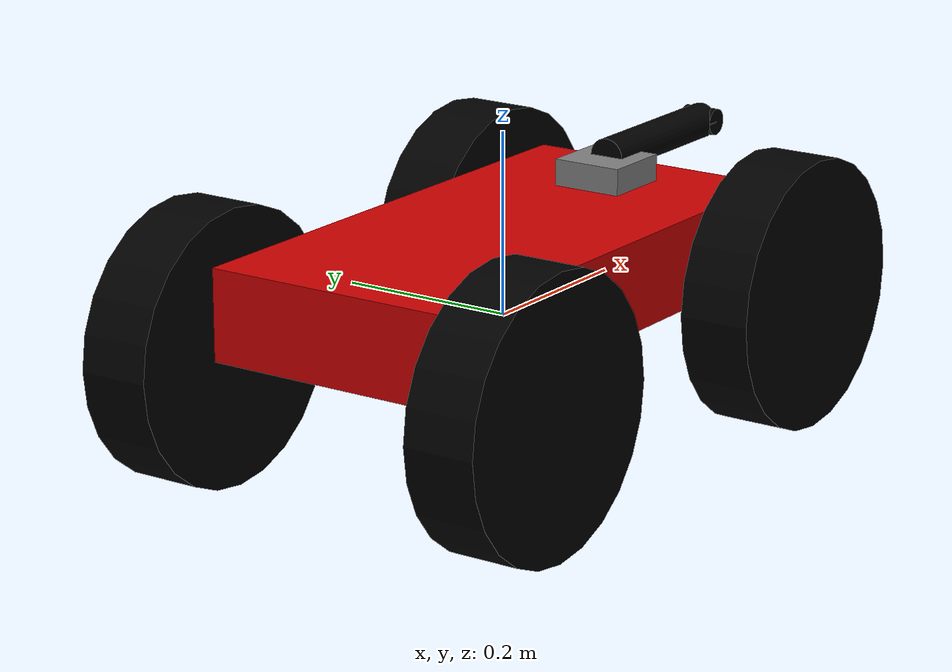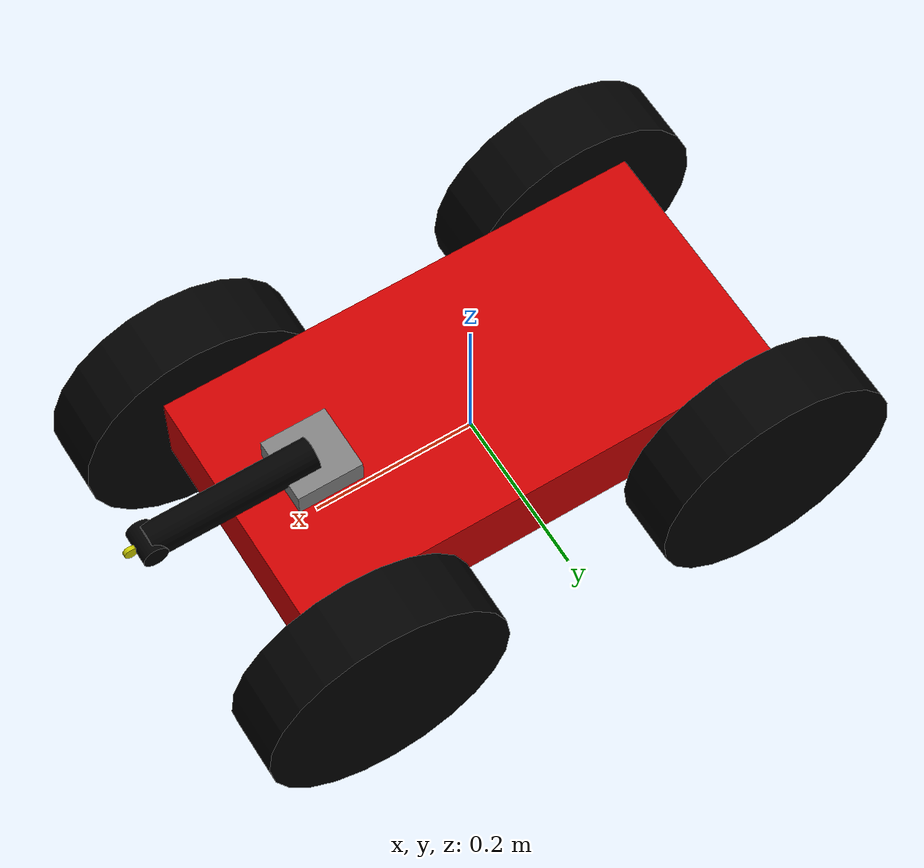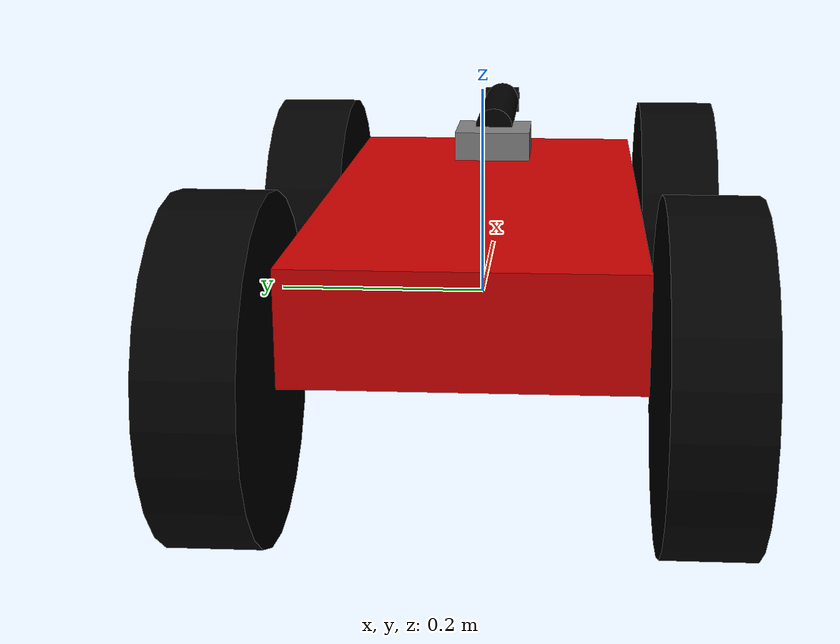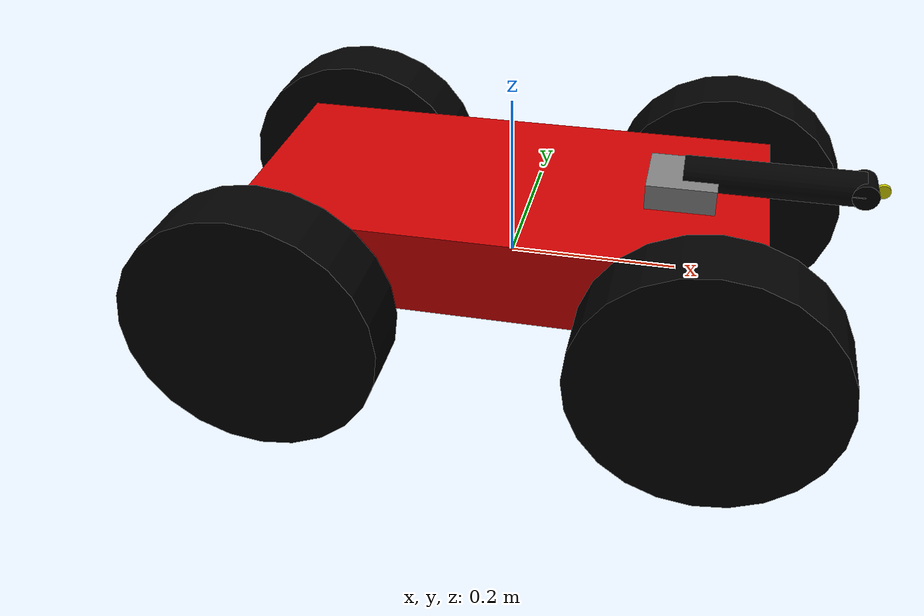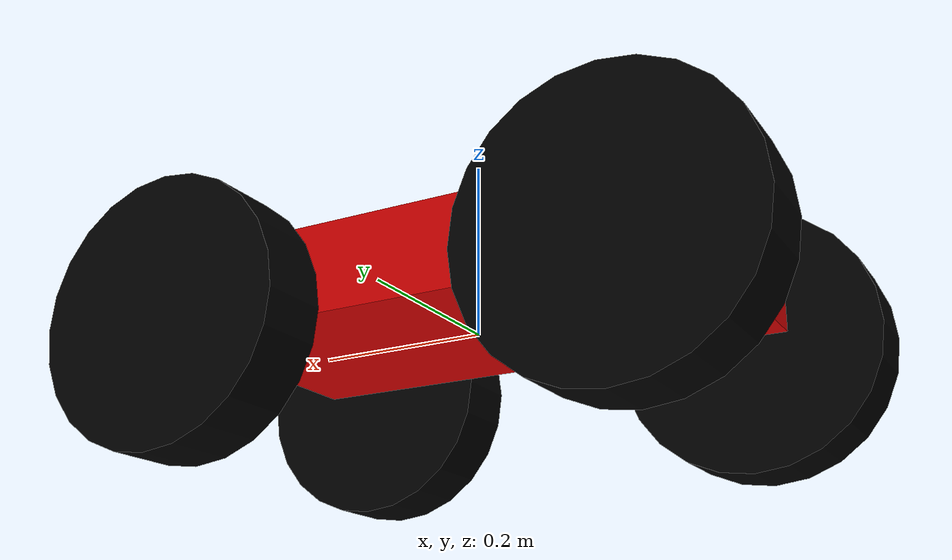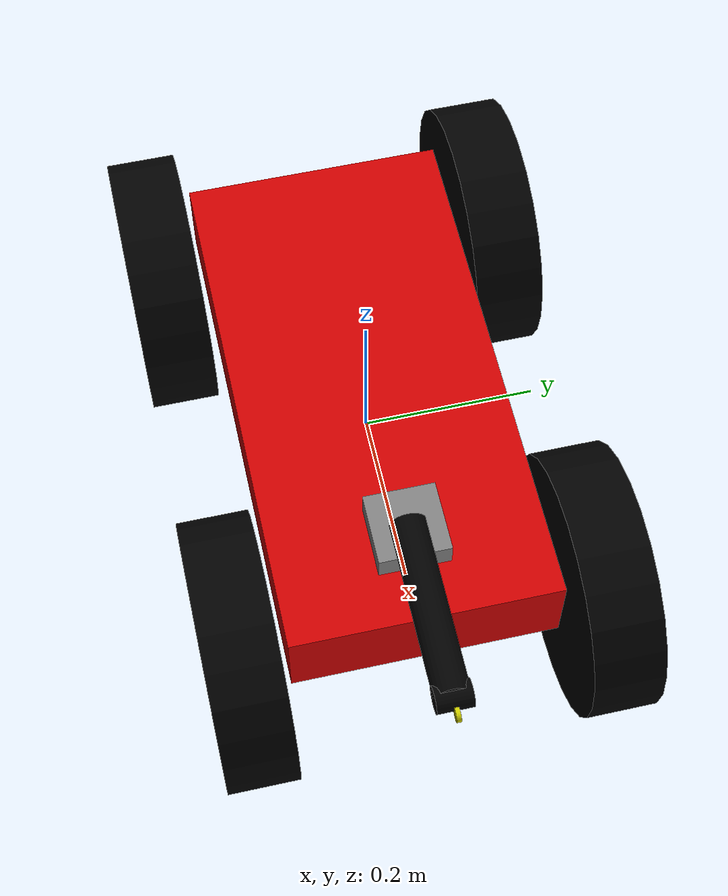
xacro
<?xml version='1.0'?>
<robot name="mogi_bot" xmlns:xacro="http://www.ros.org/wiki/xacro">

  <!-- 材料定义 -->
  <material name="blue">
    <color rgba="0 0 0.8 1"/>
  </material>
  <material name="red">
    <color rgba="0.8 0 0 1"/>
  </material>
  <material name="green">
    <color rgba="0 0.8 0 1"/>
  </material>
  <material name="yellow">
    <color rgba="0.8 0.8 0 1"/>
  </material>
  <material name="black">
    <color rgba="0 0 0 1"/>
  </material>
  <material name="gray">
    <color rgba="0.5 0.5 0.5 1"/>
  </material>
  <material name="silver">
    <color rgba="0.8 0.8 0.8 1"/>
  </material>

  <!-- 核心参数定义（四轮小车适配） -->
  <xacro:property name="base_mass" value="20.0" />
  <xacro:property name="wheel_mass" value="3.0" />
  <xacro:property name="wheel_radius" value="0.15" />  <!-- 增大轮子半径 -->
  <xacro:property name="wheel_length" value="0.08" />  <!-- 增大轮子宽度 -->
  <xacro:property name="wheel_separation" value="0.4" /> <!-- 增大左右轮间距 -->
  <xacro:property name="wheelbase" value="0.5" />        <!-- 增大前后轮间距 -->

  <!-- 云台参数 -->
  <xacro:property name="gimbal_base_mass" value="0.5" />
  <xacro:property name="gimbal_yaw_mass" value="0.5" />
  <xacro:property name="barrel_mass" value="0.3" />
  <xacro:property name="camera_mass" value="0.3" />
  <xacro:property name="barrel_length" value="0.2" />
  <xacro:property name="barrel_radius" value="0.02" />

  <link name="odom">
      <inertial>
        <mass value="0.001"/>
        <inertia ixx="0.001" ixy="0.0" ixz="0.0" iyy="0.001" iyz="0.0" izz="0.001"/>
      </inertial>
    </link>

    <!-- 新增：odom 到 base_footprint 的固定关节（里程计坐标系关联） -->
    <joint name="odom_joint" type="fixed">
      <origin xyz="0 0 0" rpy="0 0 0" />
      <parent link="odom"/>
      <child link="base_footprint"/>
    </joint>

  <link name="base_footprint">
    <inertial>
      <mass value="0.001"/>
      <inertia ixx="0.001" ixy="0.0" ixz="0.0" iyy="0.001" iyz="0.0" izz="0.001"/>
    </inertial>
  </link>

  <!-- 2. 车身底座（base_link）- 增大尺寸 -->
  <joint name="base_footprint_joint" type="fixed">
    <origin xyz="0 0 0" rpy="0 0 0" />
    <parent link="base_footprint"/>
    <child link="base_link" />
  </joint>

  <link name='base_link'>
    <inertial>
      <mass value="${base_mass}"/>
      <origin xyz="0.0 0 0.05" rpy="0 0 0"/>
      <inertia
          ixx="0.1" ixy="0" ixz="0"
          iyy="0.15" iyz="0"
          izz="0.2"
      />
    </inertial>

    <collision name='collision'>
      <origin xyz="0 0 0.05" rpy="0 0 0"/>
      <geometry>
        <box size="0.6 0.3 0.1"/>  <!-- 增大车身尺寸 -->
      </geometry>
    </collision>

    <visual name='base_link_visual'>
      <origin xyz="0 0 0.05" rpy="0 0 0"/>
      <geometry>
        <box size="0.6 0.3 0.1"/>
      </geometry>
      <material name="red"/>  <!-- 改为红色车身 -->
    </visual>
  </link>

  <!-- 3. 云台结构 -->
  <joint name="gimbal_base_joint" type="fixed">
    <origin xyz="0.2 0 0.05" rpy="0 0 0" />
    <parent link="base_link"/>
    <child link="gimbal_base" />
  </joint>

  <link name='gimbal_base'>
    <inertial>
      <mass value="${gimbal_base_mass}"/>
      <origin xyz="0 0 0.02" rpy="0 0 0"/>
      <inertia
          ixx="0.001" ixy="0" ixz="0"
          iyy="0.001" iyz="0"
          izz="0.001"
      />
    </inertial>

    <collision name='gimbal_base_collision'>
      <origin xyz="0 0 0.02" rpy="0 0 0"/>
      <geometry>
        <cylinder radius="0.04" length="0.04"/>
      </geometry>
    </collision>

    <visual name='gimbal_base_visual'>
      <origin xyz="0 0 0.02" rpy="0 0 0"/>
      <geometry>
        <cylinder radius="0.04" length="0.04"/>
      </geometry>
      <material name="silver"/>
    </visual>
  </link>

  <!-- 云台偏航关节 - 固定关节 -->
  <joint name="gimbal_yaw_joint" type="fixed">
    <origin xyz="0 0 0.04" rpy="0 0 0" />
    <parent link="gimbal_base"/>
    <child link="gimbal_yaw" />
  </joint>

  <link name='gimbal_yaw'>
    <inertial>
      <mass value="${gimbal_yaw_mass}"/>
      <origin xyz="0 0 0.02" rpy="0 0 0"/>
      <inertia
          ixx="0.0005" ixy="0" ixz="0"
          iyy="0.0005" iyz="0"
          izz="0.0005"
      />
    </inertial>

    <collision name='gimbal_yaw_collision'>
      <origin xyz="0 0 0.02" rpy="0 0 0"/>
      <geometry>
        <box size="0.08 0.08 0.04"/>
      </geometry>
    </collision>

    <visual name='gimbal_yaw_visual'>
      <origin xyz="0 0 0.02" rpy="0 0 0"/>
      <geometry>
        <box size="0.08 0.08 0.04"/>
      </geometry>
      <material name="gray"/>
    </visual>
  </link>

  <!-- 枪管连接 -->
  <joint name="barrel_joint" type="fixed">
    <origin xyz="0 0 0.04" rpy="0 0 0" />
    <parent link="gimbal_yaw"/>
    <child link="barrel_link" />
  </joint>

  <link name='barrel_link'>
    <inertial>
      <mass value="${barrel_mass}"/>
      <origin xyz="${barrel_length/2} 0 0" rpy="0 0 0"/>
      <inertia
          ixx="0.0003" ixy="0" ixz="0"
          iyy="0.0003" iyz="0"
          izz="0.0003"
      />
    </inertial>

    <collision name='barrel_collision'>
      <origin xyz="${barrel_length/2} 0 0" rpy="1.57 0 1.57"/>
      <geometry>
        <cylinder radius="${barrel_radius}" length="${barrel_length}"/>
      </geometry>
    </collision>

    <visual name='barrel_visual'>
      <origin xyz="${barrel_length/2} 0 0" rpy="1.57 0 1.57"/>
      <geometry>
        <cylinder radius="${barrel_radius}" length="${barrel_length}"/>
      </geometry>
      <material name="black"/>
    </visual>
  </link>

  <!-- 相机安装在枪管末端 -->
  <joint name="camera_joint" type="fixed">
    <origin xyz="${barrel_length} 0 0" rpy="0 0 0" />
    <parent link="barrel_link"/>
    <child link="camera_link" />
  </joint>

  <link name='camera_link'>
    <inertial>
      <mass value="${camera_mass}"/>
      <origin xyz="0 0 0" rpy="0 0 0"/>
      <inertia
          ixx="0.0001" ixy="0" ixz="0"
          iyy="0.0001" iyz="0"
          izz="0.0001"
      />
    </inertial>

    <visual name='camera_visual'>
      <origin xyz="0 0 0" rpy="0 1.5708 1.5708"/>
      <geometry>
        <cylinder radius="0.015" length="0.04"/>
      </geometry>
      <material name="black"/>
    </visual>

    <visual name='camera_lens_visual'>
      <origin xyz="0.02 0 0" rpy="0 1.5708 1.5708"/>
      <geometry>
        <cylinder radius="0.008" length="0.005"/>
      </geometry>
      <material name="yellow"/>  <!-- 黄色镜头 -->
    </visual>
  </link>

  <!-- 4. 四轮驱动结构 -->
  <!-- 前轮（左） -->
  <joint type="continuous" name="front_left_wheel_joint">
    <origin xyz="${wheelbase/2} ${wheel_separation/2} 0" rpy="0 0 0"/>
    <child link="front_left_wheel"/>
    <parent link="base_link"/>
    <axis xyz="0 1 0"/>
    <limit effort="100" velocity="10"/>
    <dynamics damping="1.0" friction="1.0"/>
  </joint>

  <link name='front_left_wheel'>
    <inertial>
      <mass value="${wheel_mass}"/>
      <origin xyz="0 0 0" rpy="0 1.5707 1.5707"/>
      <inertia
          ixx="0.02" ixy="0" ixz="0"
          iyy="0.02" iyz="0"
          izz="0.035"
      />
    </inertial>

    <collision name="front_left_wheel_collision">
      <origin xyz="0 0 0" rpy="0 1.5707 1.5707"/>
      <geometry>
        <cylinder radius="${wheel_radius}" length="${wheel_length}"/>
      </geometry>
    </collision>

    <visual name='front_left_wheel_visual'>
      <origin xyz="0 0 0" rpy="0 1.5707 1.5707"/>
      <geometry>
        <cylinder radius="${wheel_radius}" length="${wheel_length}"/>
      </geometry>
      <material name="black"/>
    </visual>
  </link>

  <!-- 前轮（右） -->
  <joint type="continuous" name="front_right_wheel_joint">
    <origin xyz="${wheelbase/2} -${wheel_separation/2} 0" rpy="0 0 0"/>
    <child link="front_right_wheel"/>
    <parent link="base_link"/>
    <axis xyz="0 1 0"/>
    <limit effort="100" velocity="10"/>
    <dynamics damping="1.0" friction="1.0"/>
  </joint>

  <link name='front_right_wheel'>
    <inertial>
      <mass value="${wheel_mass}"/>
      <origin xyz="0 0 0" rpy="0 1.5707 1.5707"/>
      <inertia
          ixx="0.02" ixy="0" ixz="0"
          iyy="0.02" iyz="0"
          izz="0.035"
      />
    </inertial>

    <collision name="front_right_wheel_collision">
      <origin xyz="0 0 0" rpy="0 1.5707 1.5707"/>
      <geometry>
        <cylinder radius="${wheel_radius}" length="${wheel_length}"/>
      </geometry>
    </collision>

    <visual name='front_right_wheel_visual'>
      <origin xyz="0 0 0" rpy="0 1.5707 1.5707"/>
      <geometry>
        <cylinder radius="${wheel_radius}" length="${wheel_length}"/>
      </geometry>
      <material name="black"/>
    </visual>
  </link>

  <!-- 后轮（左） -->
  <joint type="continuous" name="rear_left_wheel_joint">
    <origin xyz="-${wheelbase/2} ${wheel_separation/2} 0" rpy="0 0 0"/>
    <child link="rear_left_wheel"/>
    <parent link="base_link"/>
    <axis xyz="0 1 0"/>
    <limit effort="100" velocity="10"/>
    <dynamics damping="1.0" friction="1.0"/>
  </joint>

  <link name='rear_left_wheel'>
    <inertial>
      <mass value="${wheel_mass}"/>
      <origin xyz="0 0 0" rpy="0 1.5707 1.5707"/>
      <inertia
          ixx="0.02" ixy="0" ixz="0"
          iyy="0.02" iyz="0"
          izz="0.035"
      />
    </inertial>

    <collision name="rear_left_wheel_collision">
      <origin xyz="0 0 0" rpy="0 1.5707 1.5707"/>
      <geometry>
        <cylinder radius="${wheel_radius}" length="${wheel_length}"/>
      </geometry>
    </collision>

    <visual name='rear_left_wheel_visual'>
      <origin xyz="0 0 0" rpy="0 1.5707 1.5707"/>
      <geometry>
        <cylinder radius="${wheel_radius}" length="${wheel_length}"/>
      </geometry>
      <material name="black"/>
    </visual>
  </link>

  <joint type="continuous" name="rear_right_wheel_joint">
    <origin xyz="-${wheelbase/2} -${wheel_separation/2} 0" rpy="0 0 0"/>
    <child link="rear_right_wheel"/>
    <parent link="base_link"/>
    <axis xyz="0 1 0"/>
    <limit effort="100" velocity="10"/>
    <dynamics damping="1.0" friction="1.0"/>
  </joint>

  <link name='rear_right_wheel'>
    <inertial>
      <mass value="${wheel_mass}"/>
      <origin xyz="0 0 0" rpy="0 1.5707 1.5707"/>
      <inertia
          ixx="0.02" ixy="0" ixz="0"
          iyy="0.02" iyz="0"
          izz="0.035"
      />
    </inertial>

    <collision name="rear_right_wheel_collision">
      <origin xyz="0 0 0" rpy="0 1.5707 1.5707"/>
      <geometry>
        <cylinder radius="${wheel_radius}" length="${wheel_length}"/>
      </geometry>
    </collision>

    <visual name='rear_right_wheel_visual'>
      <origin xyz="0 0 0" rpy="0 1.5707 1.5707"/>
      <geometry>
        <cylinder radius="${wheel_radius}" length="${wheel_length}"/>
      </geometry>
      <material name="black"/>
    </visual>
  </link>

  <gazebo>
    <plugin name="gazebo_ros2_control" filename="libgazebo_ros2_control.so">
      <parameters>$(find two_wheeled_cart)/config/controller3.yaml</parameters>
      <controller_manager_node_name>controller_manager</controller_manager_node_name>
    </plugin>
  </gazebo>

  <gazebo reference="camera_link">
    <sensor type="camera" name="camera1">
      <update_rate>30.0</update_rate>
      <camera name="head">
        <horizontal_fov>1.0472</horizontal_fov>
        <image>
          <width>640</width>
          <height>480</height>
          <format>R8G8B8</format>
        </image>
        <clip>
          <near>0.05</near>
          <far>100</far>
        </clip>
      </camera>
      <plugin name="camera_controller" filename="libgazebo_ros_camera.so">
        <ros>
          <namespace>/mogi_bot</namespace>
          <remapping>image_raw:=camera/image_raw</remapping>
          <remapping>camera_info:=camera/camera_info</remapping>
        </ros>
        <camera_name>camera</camera_name>
        <frame_name>camera_link</frame_name>
        <hack_baseline>0.07</hack_baseline>
      </plugin>
    </sensor>
  </gazebo>

  <!-- 6. ros2_control配置（四轮差速控制） -->
  <ros2_control name="mogi_hardware_interface" type="system">
    <hardware>
      <plugin>gazebo_ros2_control/GazeboSystem</plugin>
      <param name="robot_param">robot_description</param>
    </hardware>

    <joint name="front_left_wheel_joint">
      <command_interface name="velocity"/>
      <state_interface name="position"/>
      <state_interface name="velocity"/>
    </joint>
    <joint name="front_right_wheel_joint">
      <command_interface name="velocity"/>
      <state_interface name="position"/>
      <state_interface name="velocity"/>
    </joint>
    <joint name="rear_left_wheel_joint">
      <command_interface name="velocity"/>
      <state_interface name="position"/>
      <state_interface name="velocity"/>
    </joint>
    <joint name="rear_right_wheel_joint">
      <command_interface name="velocity"/>
      <state_interface name="position"/>
      <state_interface name="velocity"/>
    </joint>
  </ros2_control>

</robot>
